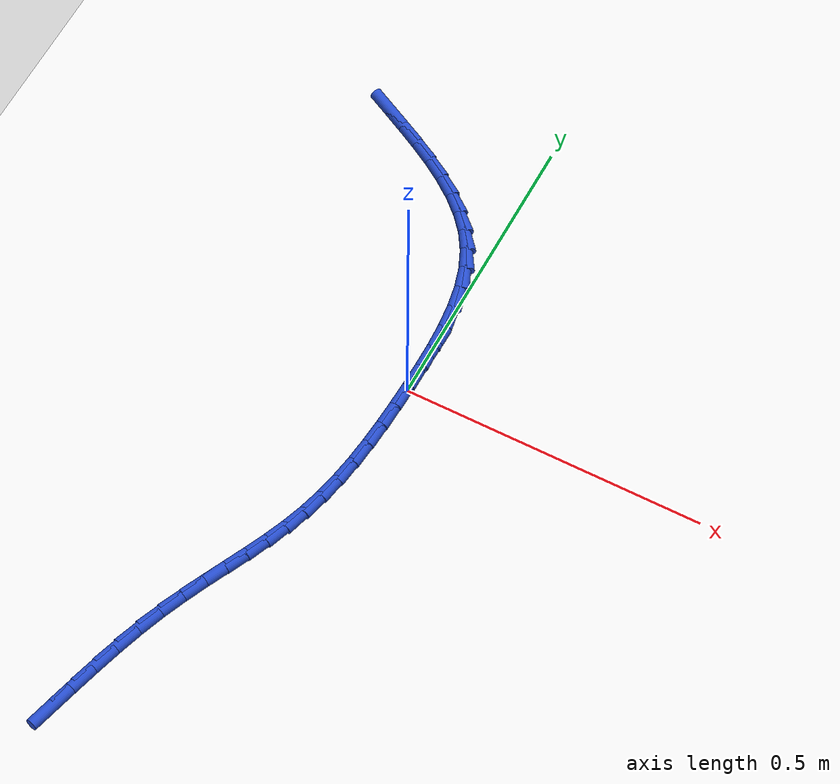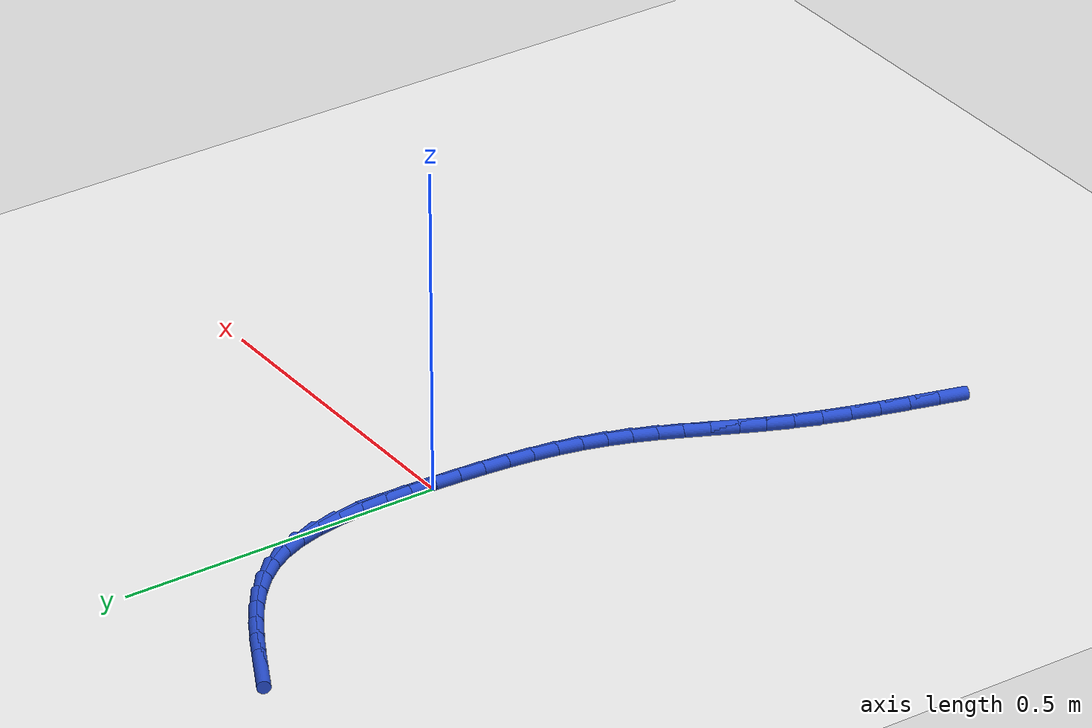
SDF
<sdf version="1.6">
 <world name="default">
  <model name="ground_plane">
   <static>1</static>
   <link name="link">
    <collision name="collision">
     <geometry><plane><normal>0 0 1</normal><size>100 100</size></plane></geometry>
     <surface><friction><ode><mu>100</mu><mu2>50</mu2></ode></friction></surface>
    </collision>
    <visual name="visual">
     <cast_shadows>0</cast_shadows>
     <geometry><plane><normal>0 0 1</normal><size>100 100</size></plane></geometry>
     <material>
      <script><uri>file://media/materials/scripts/gazebo.material</uri><name>Gazebo/WhiteGlow</name></script>
     </material>
    </visual>
   </link>
  </model>
  <model name="line">
   <link name="link_0">
    <pose>4.0793106739767104e-18 0.0 0.01 0 1.57 1.5459125641176432</pose>
    <collision name="collision">
     <geometry><cylinder><radius>0.01</radius><length>0.08</length></cylinder></geometry>
    </collision>
    <visual name="visual">
     <material>
      <script><name>Gazebo/Blue</name><uri>file://media/materials/scripts/gazebo.material</uri></script>
     </material>
     <geometry><cylinder><radius>0.01</radius><length>0.08</length></cylinder></geometry>
    </visual>
   </link>
   <link name="link_1">
    <pose>0.0010174588526017984 0.04088002498099286 0.01 0 1.57 -1.5694775133342729</pose>
    <collision name="collision">
     <geometry><cylinder><radius>0.01</radius><length>0.08</length></cylinder></geometry>
    </collision>
    <visual name="visual">
     <material>
      <script><name>Gazebo/Blue</name><uri>file://media/materials/scripts/gazebo.material</uri></script>
     </material>
     <geometry><cylinder><radius>0.01</radius><length>0.08</length></cylinder></geometry>
    </visual>
   </link>
   <link name="link_2">
    <pose>0.0009635203807015269 0.08177924404384976 0.01 0 1.57 -1.5282282760953245</pose>
    <collision name="collision">
     <geometry><cylinder><radius>0.01</radius><length>0.08</length></cylinder></geometry>
    </collision>
    <visual name="visual">
     <material>
      <script><name>Gazebo/Blue</name><uri>file://media/materials/scripts/gazebo.material</uri></script>
     </material>
     <geometry><cylinder><radius>0.01</radius><length>0.08</length></cylinder></geometry>
    </visual>
   </link>
   <link name="link_3">
    <pose>-0.0007569286436015948 0.12217126803712974 0.01 0 1.57 -1.4699648799039942</pose>
    <collision name="collision">
     <geometry><cylinder><radius>0.01</radius><length>0.08</length></cylinder></geometry>
    </collision>
    <visual name="visual">
     <material>
      <script><name>Gazebo/Blue</name><uri>file://media/materials/scripts/gazebo.material</uri></script>
     </material>
     <geometry><cylinder><radius>0.01</radius><length>0.08</length></cylinder></geometry>
    </visual>
   </link>
   <link name="link_4">
    <pose>-0.004739001448208348 0.1615297078093917 0.01 0 1.57 -1.3918044302271575</pose>
    <collision name="collision">
     <geometry><cylinder><radius>0.01</radius><length>0.08</length></cylinder></geometry>
    </collision>
    <visual name="visual">
     <material>
      <script><name>Gazebo/Blue</name><uri>file://media/materials/scripts/gazebo.material</uri></script>
     </material>
     <geometry><cylinder><radius>0.01</radius><length>0.08</length></cylinder></geometry>
    </visual>
   </link>
   <link name="link_5">
    <pose>-0.011577811261019519 0.19932817420919463 0.01 0 1.57 -1.2902406140046252</pose>
    <collision name="collision">
     <geometry><cylinder><radius>0.01</radius><length>0.08</length></cylinder></geometry>
    </collision>
    <visual name="visual">
     <material>
      <script><name>Gazebo/Blue</name><uri>file://media/materials/scripts/gazebo.material</uri></script>
     </material>
     <geometry><cylinder><radius>0.01</radius><length>0.08</length></cylinder></geometry>
    </visual>
   </link>
   <link name="link_6">
    <pose>-0.0218684713099359 0.2350402780850974 0.01 0 1.57 -1.1620265997661303</pose>
    <collision name="collision">
     <geometry><cylinder><radius>0.01</radius><length>0.08</length></cylinder></geometry>
    </collision>
    <visual name="visual">
     <material>
      <script><name>Gazebo/Blue</name><uri>file://media/materials/scripts/gazebo.material</uri></script>
     </material>
     <geometry><cylinder><radius>0.01</radius><length>0.08</length></cylinder></geometry>
    </visual>
   </link>
   <link name="link_7">
    <pose>-0.036206094822858255 0.26813963028565907 0.01 0 1.57 -1.0119722392426187</pose>
    <collision name="collision">
     <geometry><cylinder><radius>0.01</radius><length>0.08</length></cylinder></geometry>
    </collision>
    <visual name="visual">
     <material>
      <script><name>Gazebo/Blue</name><uri>file://media/materials/scripts/gazebo.material</uri></script>
     </material>
     <geometry><cylinder><radius>0.01</radius><length>0.08</length></cylinder></geometry>
    </visual>
   </link>
   <link name="link_8">
    <pose>-0.0550229588782622 0.29823156113833743 0.01 0 1.57 -0.8715382130127898</pose>
    <collision name="collision">
     <geometry><cylinder><radius>0.01</radius><length>0.08</length></cylinder></geometry>
    </collision>
    <visual name="visual">
     <material>
      <script><name>Gazebo/Blue</name><uri>file://media/materials/scripts/gazebo.material</uri></script>
     </material>
     <geometry><cylinder><radius>0.01</radius><length>0.08</length></cylinder></geometry>
    </visual>
   </link>
   <link name="link_9">
    <pose>-0.07798858361329088 0.32553840123246996 0.01 0 1.57 -0.7536294902597601</pose>
    <collision name="collision">
     <geometry><cylinder><radius>0.01</radius><length>0.08</length></cylinder></geometry>
    </collision>
    <visual name="visual">
     <material>
      <script><name>Gazebo/Blue</name><uri>file://media/materials/scripts/gazebo.material</uri></script>
     </material>
     <geometry><cylinder><radius>0.01</radius><length>0.08</length></cylinder></geometry>
    </visual>
   </link>
   <link name="link_10">
    <pose>-0.1045493412333137 0.35046298732506265 0.01 0 1.57 -0.6593830718562225</pose>
    <collision name="collision">
     <geometry><cylinder><radius>0.01</radius><length>0.08</length></cylinder></geometry>
    </collision>
    <visual name="visual">
     <material>
      <script><name>Gazebo/Blue</name><uri>file://media/materials/scripts/gazebo.material</uri></script>
     </material>
     <geometry><cylinder><radius>0.01</radius><length>0.08</length></cylinder></geometry>
    </visual>
   </link>
   <link name="link_11">
    <pose>-0.1341515761600176 0.3734081786475668 0.01 0 1.57 -0.5874692081454452</pose>
    <collision name="collision">
     <geometry><cylinder><radius>0.01</radius><length>0.08</length></cylinder></geometry>
    </collision>
    <visual name="visual">
     <material>
      <script><name>Gazebo/Blue</name><uri>file://media/materials/scripts/gazebo.material</uri></script>
     </material>
     <geometry><cylinder><radius>0.01</radius><length>0.08</length></cylinder></geometry>
    </visual>
   </link>
   <link name="link_12">
    <pose>-0.16624163281508936 0.39477683443143397 0.01 0 1.57 -0.5356612256812052</pose>
    <collision name="collision">
     <geometry><cylinder><radius>0.01</radius><length>0.08</length></cylinder></geometry>
    </collision>
    <visual name="visual">
     <material>
      <script><name>Gazebo/Blue</name><uri>file://media/materials/scripts/gazebo.material</uri></script>
     </material>
     <geometry><cylinder><radius>0.01</radius><length>0.08</length></cylinder></geometry>
    </visual>
   </link>
   <link name="link_13">
    <pose>-0.20026585562021568 0.41497181390811555 0.01 0 1.57 -0.5017921582756374</pose>
    <collision name="collision">
     <geometry><cylinder><radius>0.01</radius><length>0.08</length></cylinder></geometry>
    </collision>
    <visual name="visual">
     <material>
      <script><name>Gazebo/Blue</name><uri>file://media/materials/scripts/gazebo.material</uri></script>
     </material>
     <geometry><cylinder><radius>0.01</radius><length>0.08</length></cylinder></geometry>
    </visual>
   </link>
   <link name="link_14">
    <pose>-0.23567058899708365 0.43439597630906335 0.01 0 1.57 -0.48419578139427033</pose>
    <collision name="collision">
     <geometry><cylinder><radius>0.01</radius><length>0.08</length></cylinder></geometry>
    </collision>
    <visual name="visual">
     <material>
      <script><name>Gazebo/Blue</name><uri>file://media/materials/scripts/gazebo.material</uri></script>
     </material>
     <geometry><cylinder><radius>0.01</radius><length>0.08</length></cylinder></geometry>
    </visual>
   </link>
   <link name="link_15">
    <pose>-0.2719021773673798 0.45345218086572864 0.01 0 1.57 -0.48185853467641737</pose>
    <collision name="collision">
     <geometry><cylinder><radius>0.01</radius><length>0.08</length></cylinder></geometry>
    </collision>
    <visual name="visual">
     <material>
      <script><name>Gazebo/Blue</name><uri>file://media/materials/scripts/gazebo.material</uri></script>
     </material>
     <geometry><cylinder><radius>0.01</radius><length>0.08</length></cylinder></geometry>
    </visual>
   </link>
   <link name="link_211">
    <pose>-0.20833377131956232 -0.7265582380908968 0.01 0 1.57 1.3079678150025458</pose>
    <collision name="collision">
     <geometry><cylinder><radius>0.01</radius><length>0.08</length></cylinder></geometry>
    </collision>
    <visual name="visual">
     <material>
      <script><name>Gazebo/Blue</name><uri>file://media/materials/scripts/gazebo.material</uri></script>
     </material>
     <geometry><cylinder><radius>0.01</radius><length>0.08</length></cylinder></geometry>
    </visual>
   </link>
   <link name="link_212">
    <pose>-0.19660636139668342 -0.6829704270213713 0.01 0 1.57 1.3001888208452745</pose>
    <collision name="collision">
     <geometry><cylinder><radius>0.01</radius><length>0.08</length></cylinder></geometry>
    </collision>
    <visual name="visual">
     <material>
      <script><name>Gazebo/Blue</name><uri>file://media/materials/scripts/gazebo.material</uri></script>
     </material>
     <geometry><cylinder><radius>0.01</radius><length>0.08</length></cylinder></geometry>
    </visual>
   </link>
   <link name="link_213">
    <pose>-0.18457243110853647 -0.639591200545591 0.01 0 1.57 1.2837199554475112</pose>
    <collision name="collision">
     <geometry><cylinder><radius>0.01</radius><length>0.08</length></cylinder></geometry>
    </collision>
    <visual name="visual">
     <material>
      <script><name>Gazebo/Blue</name><uri>file://media/materials/scripts/gazebo.material</uri></script>
     </material>
     <geometry><cylinder><radius>0.01</radius><length>0.08</length></cylinder></geometry>
    </visual>
   </link>
   <link name="link_214">
    <pose>-0.17196816493300354 -0.5968983883272598 0.01 0 1.57 1.2578361509847422</pose>
    <collision name="collision">
     <geometry><cylinder><radius>0.01</radius><length>0.08</length></cylinder></geometry>
    </collision>
    <visual name="visual">
     <material>
      <script><name>Gazebo/Blue</name><uri>file://media/materials/scripts/gazebo.material</uri></script>
     </material>
     <geometry><cylinder><radius>0.01</radius><length>0.08</length></cylinder></geometry>
    </visual>
   </link>
   <link name="link_215">
    <pose>-0.15852974734796632 -0.5553698200300807 0.01 0 1.57 1.2213171963235927</pose>
    <collision name="collision">
     <geometry><cylinder><radius>0.01</radius><length>0.08</length></cylinder></geometry>
    </collision>
    <visual name="visual">
     <material>
      <script><name>Gazebo/Blue</name><uri>file://media/materials/scripts/gazebo.material</uri></script>
     </material>
     <geometry><cylinder><radius>0.01</radius><length>0.08</length></cylinder></geometry>
    </visual>
   </link>
   <link name="link_216">
    <pose>-0.1439935154451054 -0.5154831490749867 0.01 0 1.57 1.178261978359239</pose>
    <collision name="collision">
     <geometry><cylinder><radius>0.01</radius><length>0.08</length></cylinder></geometry>
    </collision>
    <visual name="visual">
     <material>
      <script><name>Gazebo/Blue</name><uri>file://media/materials/scripts/gazebo.material</uri></script>
     </material>
     <geometry><cylinder><radius>0.01</radius><length>0.08</length></cylinder></geometry>
    </visual>
   </link>
   <link name="link_217">
    <pose>-0.12827261448122904 -0.4775118457639488 0.01 0 1.57 1.1455733105676493</pose>
    <collision name="collision">
     <geometry><cylinder><radius>0.01</radius><length>0.08</length></cylinder></geometry>
    </collision>
    <visual name="visual">
     <material>
      <script><name>Gazebo/Blue</name><uri>file://media/materials/scripts/gazebo.material</uri></script>
     </material>
     <geometry><cylinder><radius>0.01</radius><length>0.08</length></cylinder></geometry>
    </visual>
   </link>
   <link name="link_218">
    <pose>-0.11179777712817097 -0.44113165566910517 0.01 0 1.57 1.1279663760161587</pose>
    <collision name="collision">
     <geometry><cylinder><radius>0.01</radius><length>0.08</length></cylinder></geometry>
    </collision>
    <visual name="visual">
     <material>
      <script><name>Gazebo/Blue</name><uri>file://media/materials/scripts/gazebo.material</uri></script>
     </material>
     <geometry><cylinder><radius>0.01</radius><length>0.08</length></cylinder></geometry>
    </visual>
   </link>
   <link name="link_219">
    <pose>-0.09509395105816294 -0.4059095221892313 0.01 0 1.57 1.1268341982440035</pose>
    <collision name="collision">
     <geometry><cylinder><radius>0.01</radius><length>0.08</length></cylinder></geometry>
    </collision>
    <visual name="visual">
     <material>
      <script><name>Gazebo/Blue</name><uri>file://media/materials/scripts/gazebo.material</uri></script>
     </material>
     <geometry><cylinder><radius>0.01</radius><length>0.08</length></cylinder></geometry>
    </visual>
   </link>
   <link name="link_220">
    <pose>-0.07868608394343789 -0.37141238872310545 0.01 0 1.57 1.1432207432928043</pose>
    <collision name="collision">
     <geometry><cylinder><radius>0.01</radius><length>0.08</length></cylinder></geometry>
    </collision>
    <visual name="visual">
     <material>
      <script><name>Gazebo/Blue</name><uri>file://media/materials/scripts/gazebo.material</uri></script>
     </material>
     <geometry><cylinder><radius>0.01</radius><length>0.08</length></cylinder></geometry>
    </visual>
   </link>
   <link name="link_221">
    <pose>-0.06309912345622755 -0.3372071986695031 0.01 0 1.57 1.1777393991939806</pose>
    <collision name="collision">
     <geometry><cylinder><radius>0.01</radius><length>0.08</length></cylinder></geometry>
    </collision>
    <visual name="visual">
     <material>
      <script><name>Gazebo/Blue</name><uri>file://media/materials/scripts/gazebo.material</uri></script>
     </material>
     <geometry><cylinder><radius>0.01</radius><length>0.08</length></cylinder></geometry>
    </visual>
   </link>
   <link name="link_222">
    <pose>-0.04885801726876401 -0.3028608954272006 0.01 0 1.57 1.230346703665369</pose>
    <collision name="collision">
     <geometry><cylinder><radius>0.01</radius><length>0.08</length></cylinder></geometry>
    </collision>
    <visual name="visual">
     <material>
      <script><name>Gazebo/Blue</name><uri>file://media/materials/scripts/gazebo.material</uri></script>
     </material>
     <geometry><cylinder><radius>0.01</radius><length>0.08</length></cylinder></geometry>
    </visual>
   </link>
   <link name="link_223">
    <pose>-0.03648769386918952 -0.26794043437380666 0.01 0 1.57 1.2953079159416474</pose>
    <collision name="collision">
     <geometry><cylinder><radius>0.01</radius><length>0.08</length></cylinder></geometry>
    </collision>
    <visual name="visual">
     <material>
      <script><name>Gazebo/Blue</name><uri>file://media/materials/scripts/gazebo.material</uri></script>
     </material>
     <geometry><cylinder><radius>0.01</radius><length>0.08</length></cylinder></geometry>
    </visual>
   </link>
   <link name="link_224">
    <pose>-0.02635900246232937 -0.23210898029935287 0.01 0 1.57 1.3553419231083084</pose>
    <collision name="collision">
     <geometry><cylinder><radius>0.01</radius><length>0.08</length></cylinder></geometry>
    </collision>
    <visual name="visual">
     <material>
      <script><name>Gazebo/Blue</name><uri>file://media/materials/scripts/gazebo.material</uri></script>
     </material>
     <geometry><cylinder><radius>0.01</radius><length>0.08</length></cylinder></geometry>
    </visual>
   </link>
   <link name="link_225">
    <pose>-0.018316123500435648 -0.19535855785182116 0.01 0 1.57 1.4067484140464679</pose>
    <collision name="collision">
     <geometry><cylinder><radius>0.01</radius><length>0.08</length></cylinder></geometry>
    </collision>
    <visual name="visual">
     <material>
      <script><name>Gazebo/Blue</name><uri>file://media/materials/scripts/gazebo.material</uri></script>
     </material>
     <geometry><cylinder><radius>0.01</radius><length>0.08</length></cylinder></geometry>
    </visual>
   </link>
   <link name="link_226">
    <pose>-0.012090802258780814 -0.15775139788784018 0.01 0 1.57 1.4496268122595581</pose>
    <collision name="collision">
     <geometry><cylinder><radius>0.01</radius><length>0.08</length></cylinder></geometry>
    </collision>
    <visual name="visual">
     <material>
      <script><name>Gazebo/Blue</name><uri>file://media/materials/scripts/gazebo.material</uri></script>
     </material>
     <geometry><cylinder><radius>0.01</radius><length>0.08</length></cylinder></geometry>
    </visual>
   </link>
   <link name="link_227">
    <pose>-0.007414784012637362 -0.11934973126403887 0.01 0 1.57 1.4842604154718493</pose>
    <collision name="collision">
     <geometry><cylinder><radius>0.01</radius><length>0.08</length></cylinder></geometry>
    </collision>
    <visual name="visual">
     <material>
      <script><name>Gazebo/Blue</name><uri>file://media/materials/scripts/gazebo.material</uri></script>
     </material>
     <geometry><cylinder><radius>0.01</radius><length>0.08</length></cylinder></geometry>
    </visual>
   </link>
   <link name="link_228">
    <pose>-0.004019814037277689 -0.08021578883704503 0.01 0 1.57 1.511019943409113</pose>
    <collision name="collision">
     <geometry><cylinder><radius>0.01</radius><length>0.08</length></cylinder></geometry>
    </collision>
    <visual name="visual">
     <material>
      <script><name>Gazebo/Blue</name><uri>file://media/materials/scripts/gazebo.material</uri></script>
     </material>
     <geometry><cylinder><radius>0.01</radius><length>0.08</length></cylinder></geometry>
    </visual>
   </link>
   <link name="link_229">
    <pose>-0.0016376376079744385 -0.04041180146348944 0.01 0 1.57 1.5302947405685945</pose>
    <collision name="collision">
     <geometry><cylinder><radius>0.01</radius><length>0.08</length></cylinder></geometry>
    </collision>
    <visual name="visual">
     <material>
      <script><name>Gazebo/Blue</name><uri>file://media/materials/scripts/gazebo.material</uri></script>
     </material>
     <geometry><cylinder><radius>0.01</radius><length>0.08</length></cylinder></geometry>
    </visual>
   </link>
   <link name="link_230">
    <pose>9.717161970901333e-18 6.938893903907228e-17 0.01 0 1.57 1.5424487547690817</pose>
    <collision name="collision">
     <geometry><cylinder><radius>0.01</radius><length>0.08</length></cylinder></geometry>
    </collision>
    <visual name="visual">
     <material>
      <script><name>Gazebo/Blue</name><uri>file://media/materials/scripts/gazebo.material</uri></script>
     </material>
     <geometry><cylinder><radius>0.01</radius><length>0.08</length></cylinder></geometry>
    </visual>
   </link>
   <link name="link_231">
    <pose>0.001161353511373182 0.04095738469679471 0.01 0 1.57 1.547795866587592</pose>
    <collision name="collision">
     <geometry><cylinder><radius>0.01</radius><length>0.08</length></cylinder></geometry>
    </collision>
    <visual name="visual">
     <material>
      <script><name>Gazebo/Blue</name><uri>file://media/materials/scripts/gazebo.material</uri></script>
     </material>
     <geometry><cylinder><radius>0.01</radius><length>0.08</length></cylinder></geometry>
    </visual>
   </link>
   <link name="link_232">
    <pose>0.002114677650872603 0.08239812177026565 0.01 0 1.57 1.5451378104064228</pose>
    <collision name="collision">
     <geometry><cylinder><radius>0.01</radius><length>0.08</length></cylinder></geometry>
    </collision>
    <visual name="visual">
     <material>
      <script><name>Gazebo/Blue</name><uri>file://media/materials/scripts/gazebo.material</uri></script>
     </material>
     <geometry><cylinder><radius>0.01</radius><length>0.08</length></cylinder></geometry>
    </visual>
   </link>
  </model>
 </world>
</sdf>
